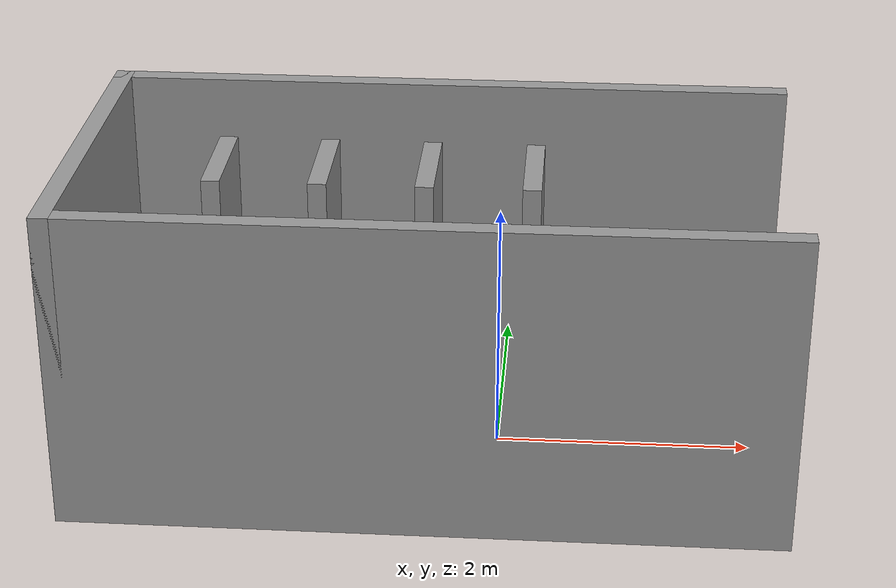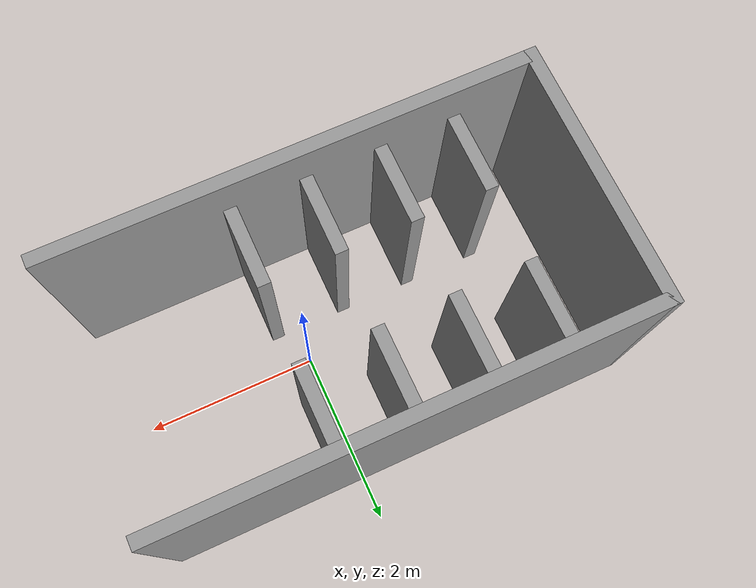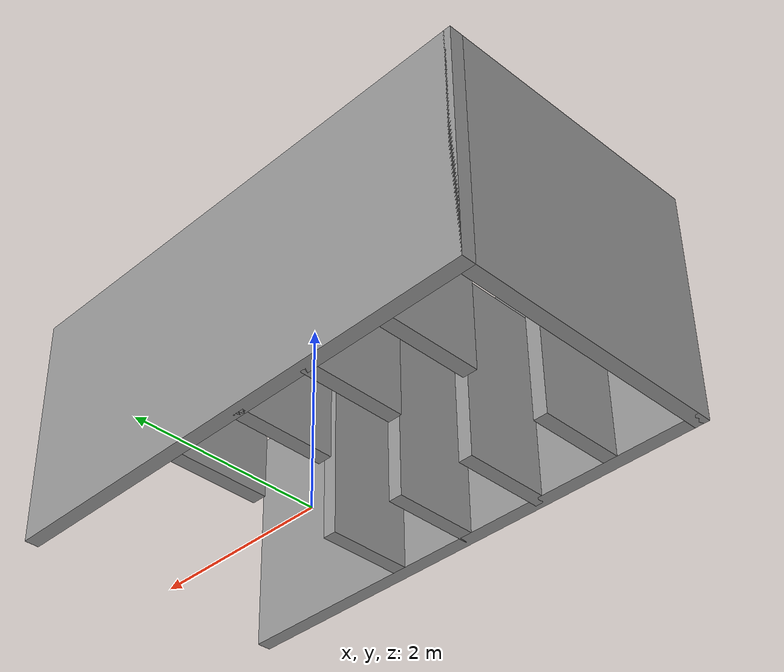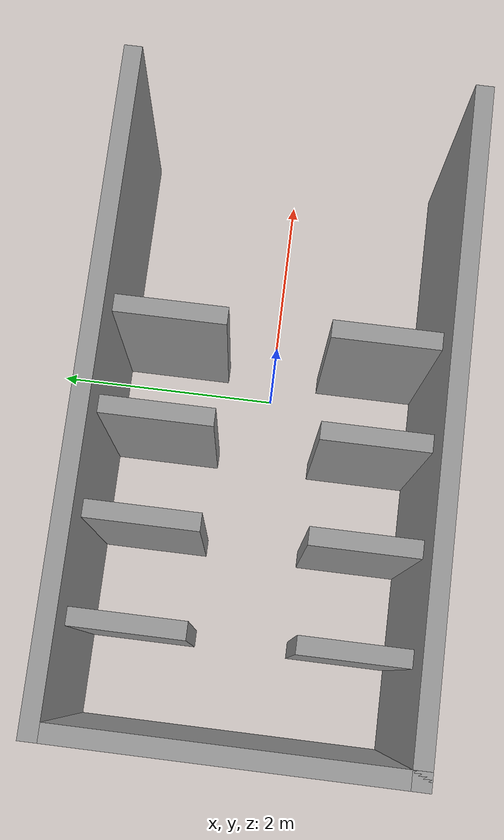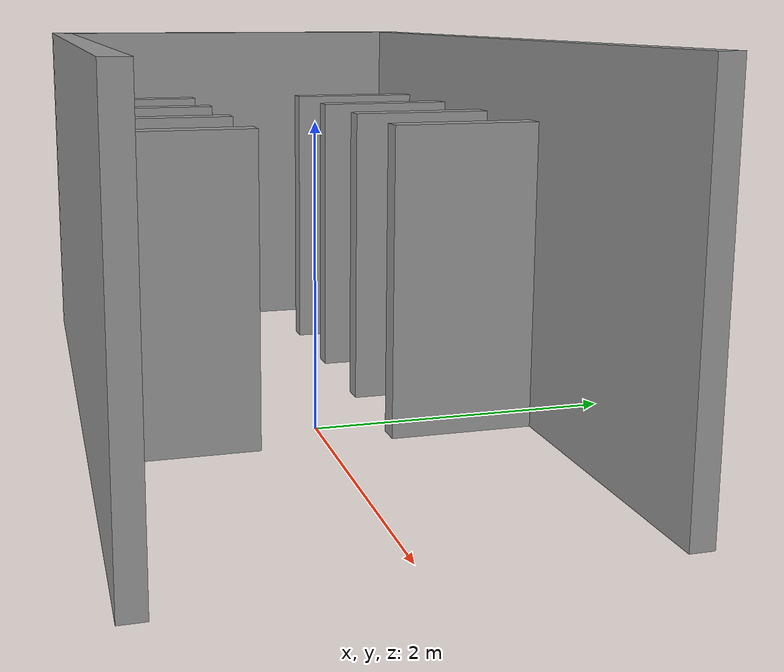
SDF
<?xml version='1.0'?>
<sdf version='1.7'>
  <model name='robocop_maze'>
    <pose>-0.512 0.022 0 0 -0 0</pose>
    <link name='Wall_27'>
      <collision name='Wall_27_Collision'>
        <geometry>
          <box>
            <size>1 0.15 2</size>
          </box>
        </geometry>
        <pose>0 0 1 0 -0 0</pose>
      </collision>
      <visual name='Wall_27_Visual'>
        <pose>0 0 1 0 -0 0</pose>
        <geometry>
          <box>
            <size>1 0.15 2</size>
          </box>
        </geometry>
        <material>
          <script>
            <uri>file://media/materials/scripts/gazebo.material</uri>
            <name>Gazebo/Grey</name>
          </script>
          <ambient>1 1 1 1</ambient>
        </material>
        <meta>
          <layer>0</layer>
        </meta>
      </visual>
      <pose>-0.111 0.906 0 0 -0 1.5708</pose>
    </link>
    <link name='Wall_29'>
      <collision name='Wall_29_Collision'>
        <geometry>
          <box>
            <size>1 0.15 2</size>
          </box>
        </geometry>
        <pose>0 0 1 0 -0 0</pose>
      </collision>
      <visual name='Wall_29_Visual'>
        <pose>0 0 1 0 -0 0</pose>
        <geometry>
          <box>
            <size>1 0.15 2</size>
          </box>
        </geometry>
        <material>
          <script>
            <uri>file://media/materials/scripts/gazebo.material</uri>
            <name>Gazebo/Grey</name>
          </script>
          <ambient>1 1 1 1</ambient>
        </material>
        <meta>
          <layer>0</layer>
        </meta>
      </visual>
      <pose>0.739 0.906 0 0 -0 1.5708</pose>
    </link>
    <link name='Wall_32'>
      <collision name='Wall_32_Collision'>
        <geometry>
          <box>
            <size>1 0.15 2</size>
          </box>
        </geometry>
        <pose>0 0 1 0 -0 0</pose>
      </collision>
      <visual name='Wall_32_Visual'>
        <pose>0 0 1 0 -0 0</pose>
        <geometry>
          <box>
            <size>1 0.15 2</size>
          </box>
        </geometry>
        <material>
          <script>
            <uri>file://media/materials/scripts/gazebo.material</uri>
            <name>Gazebo/Grey</name>
          </script>
          <ambient>1 1 1 1</ambient>
        </material>
        <meta>
          <layer>0</layer>
        </meta>
      </visual>
      <pose>-1.811 -0.944 0 0 -0 1.5708</pose>
    </link>
    <link name='Wall_35'>
      <collision name='Wall_35_Collision'>
        <geometry>
          <box>
            <size>1 0.15 2</size>
          </box>
        </geometry>
        <pose>0 0 1 0 -0 0</pose>
      </collision>
      <visual name='Wall_35_Visual'>
        <pose>0 0 1 0 -0 0</pose>
        <geometry>
          <box>
            <size>1 0.15 2</size>
          </box>
        </geometry>
        <material>
          <script>
            <uri>file://media/materials/scripts/gazebo.material</uri>
            <name>Gazebo/Grey</name>
          </script>
          <ambient>1 1 1 1</ambient>
        </material>
        <meta>
          <layer>0</layer>
        </meta>
      </visual>
      <pose>-0.961 -0.944 0 0 -0 1.5708</pose>
    </link>
    <link name='Wall_38'>
      <collision name='Wall_38_Collision'>
        <geometry>
          <box>
            <size>1 0.15 2</size>
          </box>
        </geometry>
        <pose>0 0 1 0 -0 0</pose>
      </collision>
      <visual name='Wall_38_Visual'>
        <pose>0 0 1 0 -0 0</pose>
        <geometry>
          <box>
            <size>1 0.15 2</size>
          </box>
        </geometry>
        <material>
          <script>
            <uri>file://media/materials/scripts/gazebo.material</uri>
            <name>Gazebo/Grey</name>
          </script>
          <ambient>1 1 1 1</ambient>
        </material>
        <meta>
          <layer>0</layer>
        </meta>
      </visual>
      <pose>-0.111 -0.944 0 0 -0 1.5708</pose>
    </link>
    <link name='Wall_41'>
      <collision name='Wall_41_Collision'>
        <geometry>
          <box>
            <size>1 0.15 2</size>
          </box>
        </geometry>
        <pose>0 0 1 0 -0 0</pose>
      </collision>
      <visual name='Wall_41_Visual'>
        <pose>0 0 1 0 -0 0</pose>
        <geometry>
          <box>
            <size>1 0.15 2</size>
          </box>
        </geometry>
        <material>
          <script>
            <uri>file://media/materials/scripts/gazebo.material</uri>
            <name>Gazebo/Grey</name>
          </script>
          <ambient>1 1 1 1</ambient>
        </material>
        <meta>
          <layer>0</layer>
        </meta>
      </visual>
      <pose>0.739 -0.944 0 0 -0 1.5708</pose>
    </link>
    <link name='Wall_44'>
      <collision name='Wall_44_Collision'>
        <geometry>
          <box>
            <size>1 0.15 2</size>
          </box>
        </geometry>
        <pose>0 0 1 0 -0 0</pose>
      </collision>
      <visual name='Wall_44_Visual'>
        <pose>0 0 1 0 -0 0</pose>
        <geometry>
          <box>
            <size>1 0.15 2</size>
          </box>
        </geometry>
        <material>
          <script>
            <uri>file://media/materials/scripts/gazebo.material</uri>
            <name>Gazebo/Grey</name>
          </script>
          <ambient>1 1 1 1</ambient>
        </material>
        <meta>
          <layer>0</layer>
        </meta>
      </visual>
      <pose>-0.961 0.906 0 0 -0 -1.5708</pose>
    </link>
    <link name='Wall_47'>
      <collision name='Wall_47_Collision'>
        <geometry>
          <box>
            <size>1 0.15 2</size>
          </box>
        </geometry>
        <pose>0 0 1 0 -0 0</pose>
      </collision>
      <visual name='Wall_47_Visual'>
        <pose>0 0 1 0 -0 0</pose>
        <geometry>
          <box>
            <size>1 0.15 2</size>
          </box>
        </geometry>
        <material>
          <script>
            <uri>file://media/materials/scripts/gazebo.material</uri>
            <name>Gazebo/Grey</name>
          </script>
          <ambient>1 1 1 1</ambient>
        </material>
        <meta>
          <layer>0</layer>
        </meta>
      </visual>
      <pose>-1.811 0.906 0 0 -0 -1.5708</pose>
    </link>
    <link name='Wall_49'>
      <collision name='Wall_49_Collision'>
        <geometry>
          <box>
            <size>5.5 0.15 2.5</size>
          </box>
        </geometry>
        <pose>0 0 1.25 0 -0 0</pose>
      </collision>
      <visual name='Wall_49_Visual'>
        <pose>0 0 1.25 0 -0 0</pose>
        <geometry>
          <box>
            <size>5.5 0.15 2.5</size>
          </box>
        </geometry>
        <material>
          <script>
            <uri>file://media/materials/scripts/gazebo.material</uri>
            <name>Gazebo/Grey</name>
          </script>
          <ambient>1 1 1 1</ambient>
        </material>
        <meta>
          <layer>0</layer>
        </meta>
      </visual>
      <pose>0 -1.425 0 0 -0 0</pose>
    </link>
    <link name='Wall_52'>
      <collision name='Wall_52_Collision'>
        <geometry>
          <box>
            <size>5.5 0.15 2.5</size>
          </box>
        </geometry>
        <pose>0 0 1.25 0 -0 0</pose>
      </collision>
      <visual name='Wall_52_Visual'>
        <pose>0 0 1.25 0 -0 0</pose>
        <geometry>
          <box>
            <size>5.5 0.15 2.5</size>
          </box>
        </geometry>
        <material>
          <script>
            <uri>file://media/materials/scripts/gazebo.material</uri>
            <name>Gazebo/Grey</name>
          </script>
          <ambient>1 1 1 1</ambient>
        </material>
        <meta>
          <layer>0</layer>
        </meta>
      </visual>
      <pose>0 1.425 0 0 -0 0</pose>
    </link>
    <link name='Wall_9'>
      <collision name='Wall_9_Collision'>
        <geometry>
          <box>
            <size>3 0.15 2.5</size>
          </box>
        </geometry>
        <pose>0 0 1.25 0 -0 0</pose>
      </collision>
      <visual name='Wall_9_Visual'>
        <pose>0 0 1.25 0 -0 0</pose>
        <geometry>
          <box>
            <size>3 0.15 2.5</size>
          </box>
        </geometry>
        <material>
          <script>
            <uri>file://media/materials/scripts/gazebo.material</uri>
            <name>Gazebo/Grey</name>
          </script>
          <ambient>1 1 1 1</ambient>
        </material>
        <meta>
          <layer>0</layer>
        </meta>
      </visual>
      <pose>-2.675 0 0 0 -0 -1.5708</pose>
    </link>
    <static>1</static>
  </model>
</sdf>
